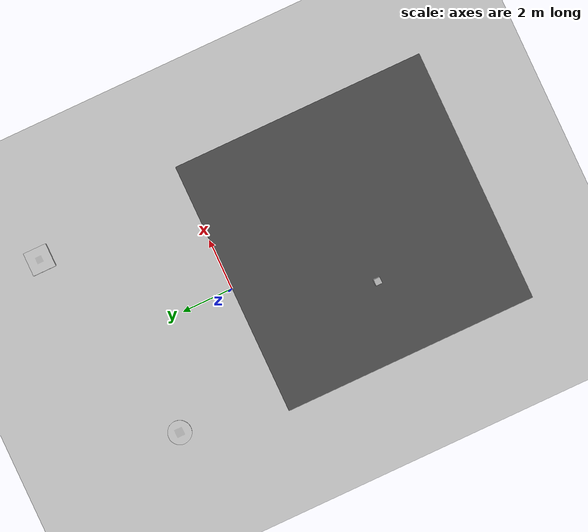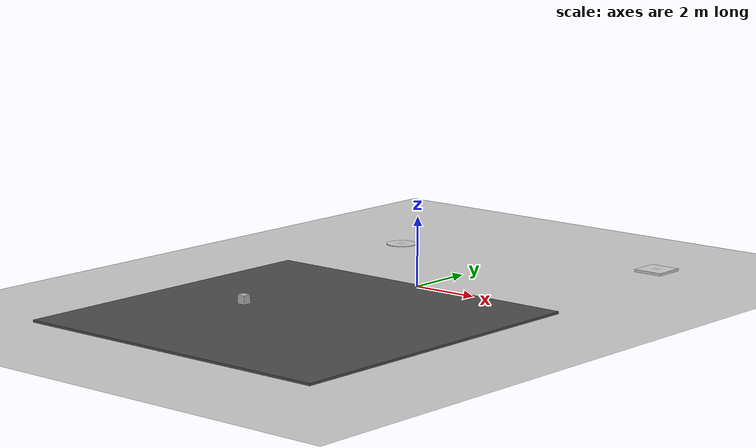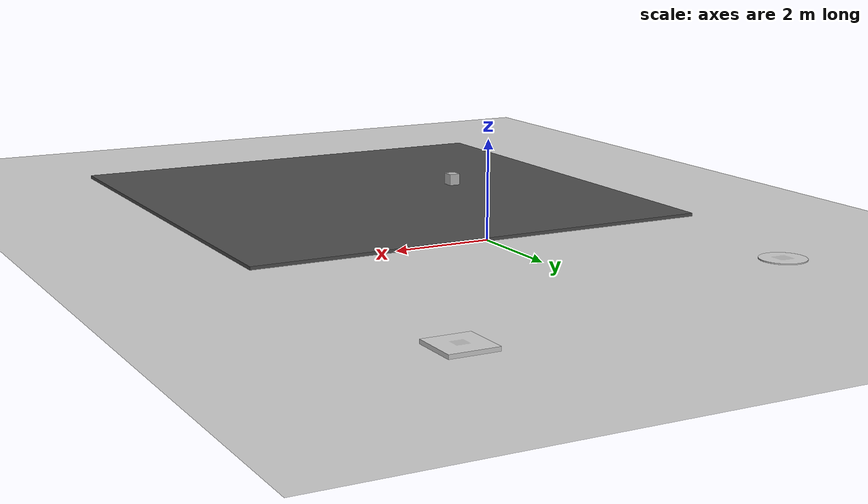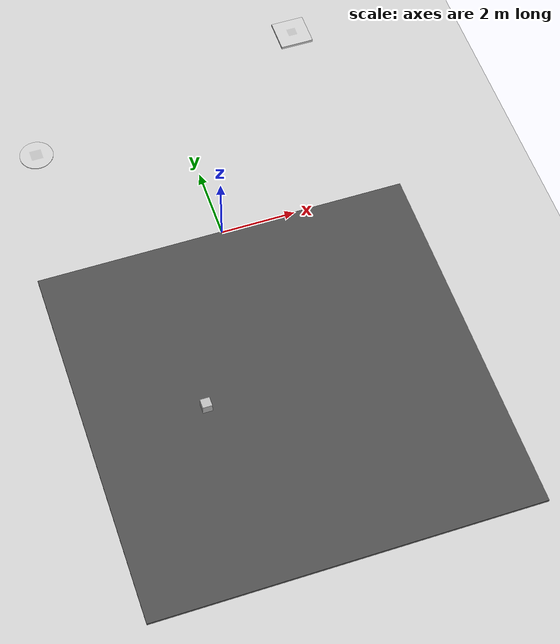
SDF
<sdf version="1.7">
 <world name="default">
  <light name="sun" type="directional">
   <pose>0 0 10 0 -0 0</pose>
   <diffuse>0.8 0.8 0.8 1</diffuse>
   <specular>0.2 0.2 0.2 1</specular>
   <attenuation>
    <range>1000</range>
    <constant>0.9</constant>
    <linear>0.01</linear>
    <quadratic>0.001</quadratic>
   </attenuation>
   <direction>-0.5 0.1 -0.9</direction>
   <spot><inner_angle>0</inner_angle><outer_angle>0</outer_angle><falloff>0</falloff></spot>
  </light>
  <model name="ground_plane">
   <static>1</static>
   <link name="link">
    <collision name="collision">
     <geometry><plane><normal>0 0 1</normal><size>100 100</size></plane></geometry>
     <surface><friction><ode><mu>100</mu><mu2>50</mu2></ode></friction></surface>
    </collision>
    <visual name="visual">
     <cast_shadows>0</cast_shadows>
     <geometry><plane><normal>0 0 1</normal><size>100 100</size></plane></geometry>
     <material>
      <script><uri>file://media/materials/scripts/gazebo.material</uri><name>Gazebo/Grey</name></script>
     </material>
    </visual>
   </link>
  </model>
  <gravity>0 0 -9.8</gravity>
  <magnetic_field>6e-06 2.3e-05 -4.2e-05</magnetic_field>
  <atmosphere type="adiabatic"/>
  <physics type="ode">
   <max_step_size>0.001</max_step_size>
   <real_time_factor>1</real_time_factor>
   <real_time_update_rate>1000</real_time_update_rate>
  </physics>
  <scene><ambient>0.4 0.4 0.4 1</ambient><background>0.7 0.7 0.7 1</background><shadows>1</shadows></scene>
  <plugin name="ros_interface_plugin" filename="librotors_gazebo_ros_interface_plugin.so"/>
  <spherical_coordinates>
   <surface_model>EARTH_WGS84</surface_model>
   <latitude_deg>0</latitude_deg>
   <longitude_deg>0</longitude_deg>
   <elevation>0</elevation>
   <heading_deg>0</heading_deg>
  </spherical_coordinates>
  <model name="asphalt_plane">
   <static>1</static>
   <link name="link">
    <collision name="collision"><geometry><box><size>9.98314 9.98108 0.1</size></box></geometry></collision>
    <visual name="visual">
     <cast_shadows>0</cast_shadows>
     <geometry><box><size>9.98314 9.98108 0.1</size></box></geometry>
     <material>
      <script>
       <uri>model://asphalt_plane/materials/scripts</uri>
       <uri>model://asphalt_plane/materials/textures</uri>
       <name>vrc/asphalt</name>
      </script>
     </material>
    </visual>
   </link>
   <pose>0 -5 0 0 -0 0</pose>
  </model>
  <model name="aruco_13_box">
   <pose>-2 -5 0.2 0 -0 0</pose>
   <link name="link">
    <inertial>
     <mass>2</mass>
     <inertia>
      <ixx>0.0416667</ixx>
      <ixy>0</ixy>
      <ixz>0</ixz>
      <iyy>0.0566667</iyy>
      <iyz>0</iyz>
      <izz>0.0683333</izz>
     </inertia>
    </inertial>
    <collision name="collision">
     <geometry><box><size>0.25 0.25 0.25</size></box></geometry>
     <surface>
      <friction><ode><mu>1</mu><mu2>1</mu2></ode></friction>
      <contact><ode><kp>1e+07</kp><kd>1</kd><min_depth>0.001</min_depth><max_vel>0.1</max_vel></ode></contact>
     </surface>
    </collision>
    <visual name="visual">
     <geometry><mesh><uri>model://aruco/aruco_box_13.dae</uri><scale>3.2808 3.2808 3.2808</scale></mesh></geometry>
    </visual>
   </link>
  </model>
  <model name="unit_box">
   <pose>4 6 0.05 0 0 0</pose>
   <link name="link">
    <inertial>
     <mass>1</mass>
     <inertia>
      <ixx>0.166667</ixx>
      <ixy>0</ixy>
      <ixz>0</ixz>
      <iyy>0.166667</iyy>
      <iyz>0</iyz>
      <izz>0.166667</izz>
     </inertia>
    </inertial>
    <collision name="collision"><geometry><box><size>2 2 0.06</size></box></geometry></collision>
    <visual name="visual">
     <geometry><mesh><uri>model://aruco/aruco_drop_zone_100.dae</uri><scale>1 1 1</scale></mesh></geometry>
    </visual>
   </link>
  </model>
  <model name="unit_cylinder">
   <pose>-4 4 0.05 0 0 0</pose>
   <link name="link">
    <inertial>
     <mass>1</mass>
     <inertia><ixx>0.145833</ixx><ixy>0</ixy><ixz>0</ixz><iyy>0.145833</iyy><iyz>0</iyz><izz>0.125</izz></inertia>
    </inertial>
    <collision name="collision">
     <geometry><cylinder><radius>1</radius><length>0.1</length></cylinder></geometry>
    </collision>
    <visual name="visual">
     <geometry><mesh><uri>model://aruco/aruco_landing_pad_0.dae</uri><scale>1 1 0.3</scale></mesh></geometry>
    </visual>
   </link>
  </model>
 </world>
</sdf>
